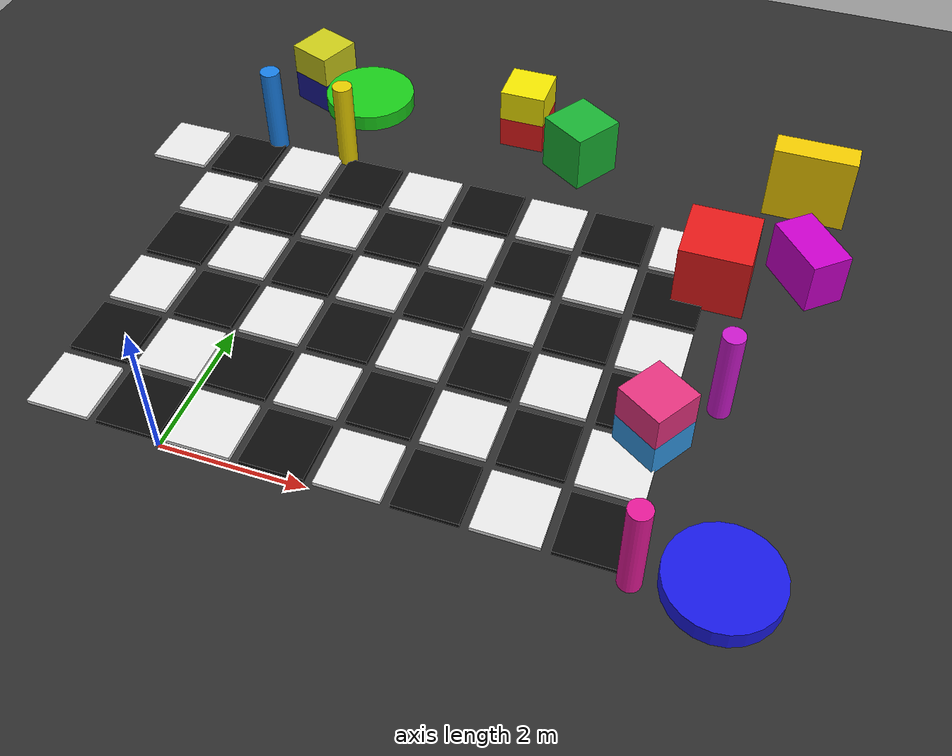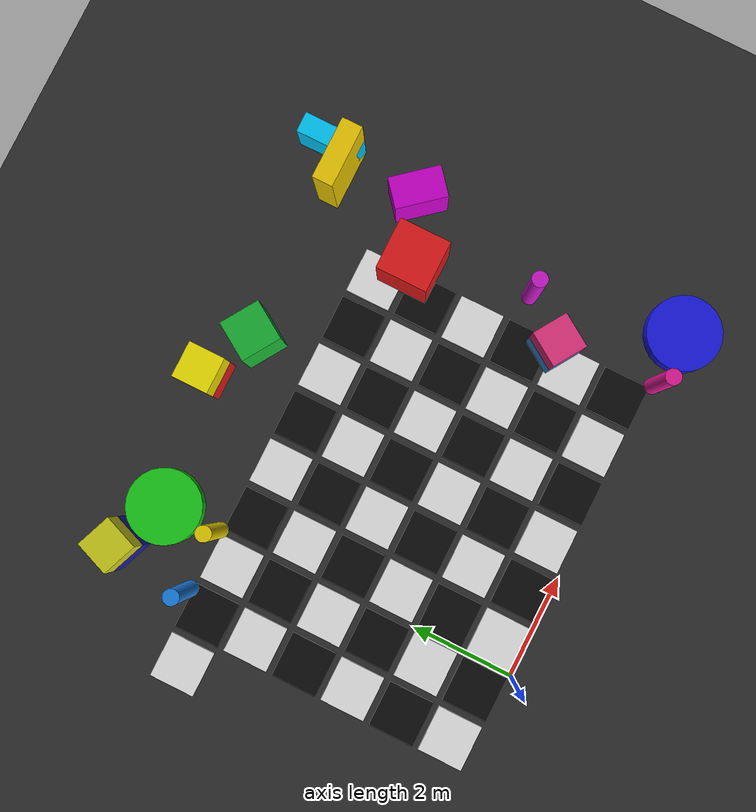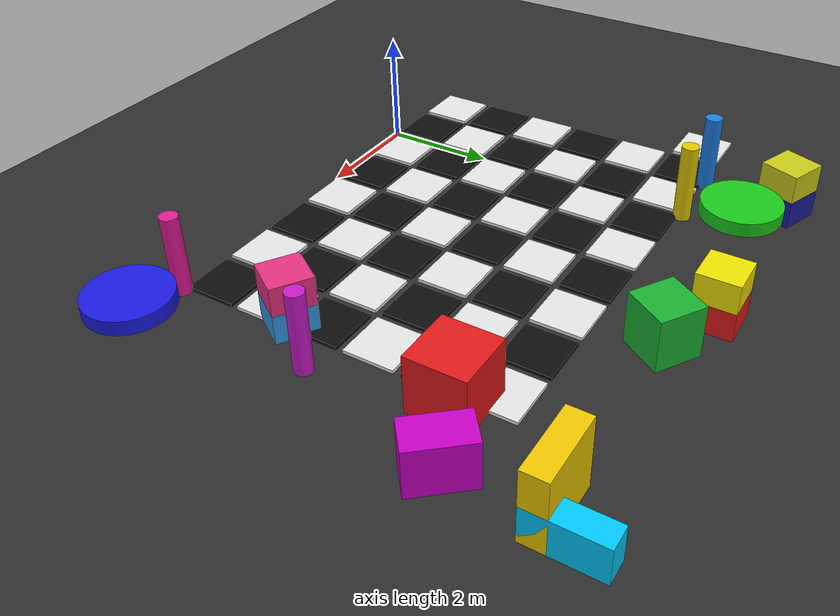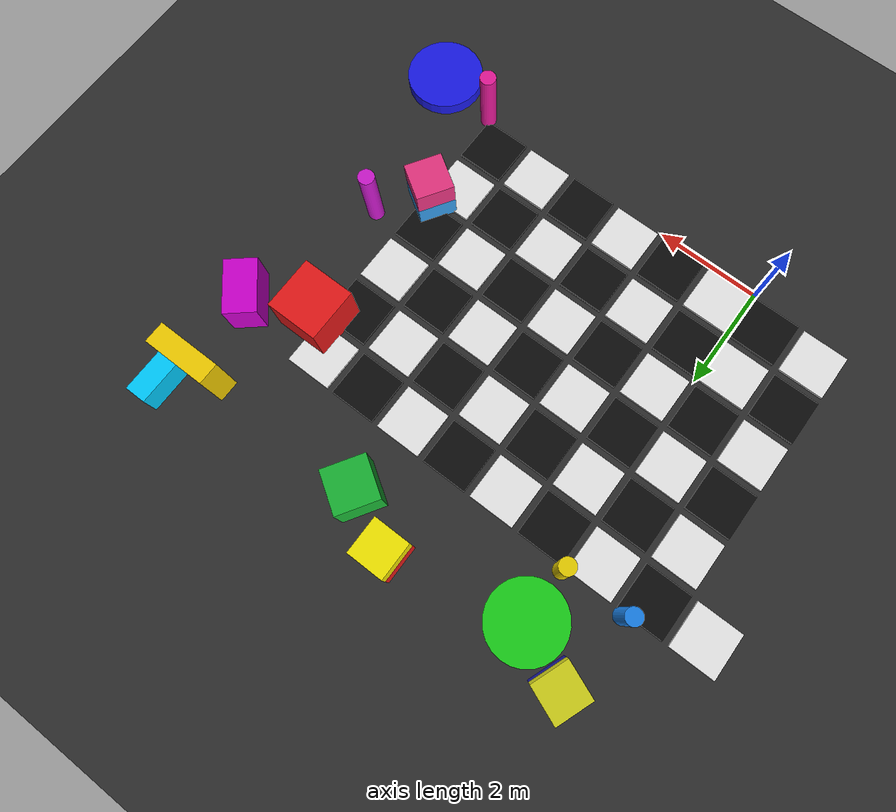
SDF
<sdf version="1.9">
 <world name="slam_world_realistic">
  <model name="ground_plane">
   <static>true</static>
   <link name="ground_link">
    <collision name="collision">
     <geometry><plane><normal>0 0 1</normal><size>80 80</size></plane></geometry>
    </collision>
    <visual name="visual">
     <geometry><plane><normal>0 0 1</normal><size>80 80</size></plane></geometry>
     <material>
      <ambient>0.15 0.15 0.15 1</ambient>
      <diffuse>0.18 0.18 0.18 1</diffuse>
      <specular>0.02 0.02 0.02 1</specular>
     </material>
    </visual>
   </link>
  </model>
  <model name="cb_47">
   <static>true</static>
   <pose>-2.500 5.500 0.03 0 0 0</pose>
   <link name="link">
    <collision name="col"><geometry><box><size>0.88 0.88 0.06</size></box></geometry></collision>
    <visual name="vis">
     <geometry><box><size>0.88 0.88 0.06</size></box></geometry>
     <material>
      <ambient>0.910 0.910 0.910 1</ambient>
      <diffuse>0.910 0.910 0.910 1</diffuse>
      <specular>0.080 0.080 0.080 1</specular>
     </material>
    </visual>
   </link>
  </model>
  <model name="cb_54">
   <static>true</static>
   <pose>-1.500 0.500 0.03 0 0 0</pose>
   <link name="link">
    <collision name="col"><geometry><box><size>0.88 0.88 0.06</size></box></geometry></collision>
    <visual name="vis">
     <geometry><box><size>0.88 0.88 0.06</size></box></geometry>
     <material>
      <ambient>0.910 0.910 0.910 1</ambient>
      <diffuse>0.910 0.910 0.910 1</diffuse>
      <specular>0.080 0.080 0.080 1</specular>
     </material>
    </visual>
   </link>
  </model>
  <model name="cb_55">
   <static>true</static>
   <pose>-1.500 1.500 0.03 0 0 0</pose>
   <link name="link">
    <collision name="col"><geometry><box><size>0.88 0.88 0.06</size></box></geometry></collision>
    <visual name="vis">
     <geometry><box><size>0.88 0.88 0.06</size></box></geometry>
     <material>
      <ambient>0.050 0.050 0.050 1</ambient>
      <diffuse>0.050 0.050 0.050 1</diffuse>
      <specular>0.020 0.020 0.020 1</specular>
     </material>
    </visual>
   </link>
  </model>
  <model name="cb_56">
   <static>true</static>
   <pose>-1.500 2.500 0.03 0 0 0</pose>
   <link name="link">
    <collision name="col"><geometry><box><size>0.88 0.88 0.06</size></box></geometry></collision>
    <visual name="vis">
     <geometry><box><size>0.88 0.88 0.06</size></box></geometry>
     <material>
      <ambient>0.910 0.910 0.910 1</ambient>
      <diffuse>0.910 0.910 0.910 1</diffuse>
      <specular>0.080 0.080 0.080 1</specular>
     </material>
    </visual>
   </link>
  </model>
  <model name="cb_57">
   <static>true</static>
   <pose>-1.500 3.500 0.03 0 0 0</pose>
   <link name="link">
    <collision name="col"><geometry><box><size>0.88 0.88 0.06</size></box></geometry></collision>
    <visual name="vis">
     <geometry><box><size>0.88 0.88 0.06</size></box></geometry>
     <material>
      <ambient>0.050 0.050 0.050 1</ambient>
      <diffuse>0.050 0.050 0.050 1</diffuse>
      <specular>0.020 0.020 0.020 1</specular>
     </material>
    </visual>
   </link>
  </model>
  <model name="cb_58">
   <static>true</static>
   <pose>-1.500 4.500 0.03 0 0 0</pose>
   <link name="link">
    <collision name="col"><geometry><box><size>0.88 0.88 0.06</size></box></geometry></collision>
    <visual name="vis">
     <geometry><box><size>0.88 0.88 0.06</size></box></geometry>
     <material>
      <ambient>0.910 0.910 0.910 1</ambient>
      <diffuse>0.910 0.910 0.910 1</diffuse>
      <specular>0.080 0.080 0.080 1</specular>
     </material>
    </visual>
   </link>
  </model>
  <model name="cb_59">
   <static>true</static>
   <pose>-1.500 5.500 0.03 0 0 0</pose>
   <link name="link">
    <collision name="col"><geometry><box><size>0.88 0.88 0.06</size></box></geometry></collision>
    <visual name="vis">
     <geometry><box><size>0.88 0.88 0.06</size></box></geometry>
     <material>
      <ambient>0.050 0.050 0.050 1</ambient>
      <diffuse>0.050 0.050 0.050 1</diffuse>
      <specular>0.020 0.020 0.020 1</specular>
     </material>
    </visual>
   </link>
  </model>
  <model name="cb_66">
   <static>true</static>
   <pose>-0.500 0.500 0.03 0 0 0</pose>
   <link name="link">
    <collision name="col"><geometry><box><size>0.88 0.88 0.06</size></box></geometry></collision>
    <visual name="vis">
     <geometry><box><size>0.88 0.88 0.06</size></box></geometry>
     <material>
      <ambient>0.050 0.050 0.050 1</ambient>
      <diffuse>0.050 0.050 0.050 1</diffuse>
      <specular>0.020 0.020 0.020 1</specular>
     </material>
    </visual>
   </link>
  </model>
  <model name="cb_67">
   <static>true</static>
   <pose>-0.500 1.500 0.03 0 0 0</pose>
   <link name="link">
    <collision name="col"><geometry><box><size>0.88 0.88 0.06</size></box></geometry></collision>
    <visual name="vis">
     <geometry><box><size>0.88 0.88 0.06</size></box></geometry>
     <material>
      <ambient>0.910 0.910 0.910 1</ambient>
      <diffuse>0.910 0.910 0.910 1</diffuse>
      <specular>0.080 0.080 0.080 1</specular>
     </material>
    </visual>
   </link>
  </model>
  <model name="cb_68">
   <static>true</static>
   <pose>-0.500 2.500 0.03 0 0 0</pose>
   <link name="link">
    <collision name="col"><geometry><box><size>0.88 0.88 0.06</size></box></geometry></collision>
    <visual name="vis">
     <geometry><box><size>0.88 0.88 0.06</size></box></geometry>
     <material>
      <ambient>0.050 0.050 0.050 1</ambient>
      <diffuse>0.050 0.050 0.050 1</diffuse>
      <specular>0.020 0.020 0.020 1</specular>
     </material>
    </visual>
   </link>
  </model>
  <model name="cb_69">
   <static>true</static>
   <pose>-0.500 3.500 0.03 0 0 0</pose>
   <link name="link">
    <collision name="col"><geometry><box><size>0.88 0.88 0.06</size></box></geometry></collision>
    <visual name="vis">
     <geometry><box><size>0.88 0.88 0.06</size></box></geometry>
     <material>
      <ambient>0.910 0.910 0.910 1</ambient>
      <diffuse>0.910 0.910 0.910 1</diffuse>
      <specular>0.080 0.080 0.080 1</specular>
     </material>
    </visual>
   </link>
  </model>
  <model name="cb_70">
   <static>true</static>
   <pose>-0.500 4.500 0.03 0 0 0</pose>
   <link name="link">
    <collision name="col"><geometry><box><size>0.88 0.88 0.06</size></box></geometry></collision>
    <visual name="vis">
     <geometry><box><size>0.88 0.88 0.06</size></box></geometry>
     <material>
      <ambient>0.050 0.050 0.050 1</ambient>
      <diffuse>0.050 0.050 0.050 1</diffuse>
      <specular>0.020 0.020 0.020 1</specular>
     </material>
    </visual>
   </link>
  </model>
  <model name="cb_71">
   <static>true</static>
   <pose>-0.500 5.500 0.03 0 0 0</pose>
   <link name="link">
    <collision name="col"><geometry><box><size>0.88 0.88 0.06</size></box></geometry></collision>
    <visual name="vis">
     <geometry><box><size>0.88 0.88 0.06</size></box></geometry>
     <material>
      <ambient>0.910 0.910 0.910 1</ambient>
      <diffuse>0.910 0.910 0.910 1</diffuse>
      <specular>0.080 0.080 0.080 1</specular>
     </material>
    </visual>
   </link>
  </model>
  <model name="cb_78">
   <static>true</static>
   <pose>0.500 0.500 0.03 0 0 0</pose>
   <link name="link">
    <collision name="col"><geometry><box><size>0.88 0.88 0.06</size></box></geometry></collision>
    <visual name="vis">
     <geometry><box><size>0.88 0.88 0.06</size></box></geometry>
     <material>
      <ambient>0.910 0.910 0.910 1</ambient>
      <diffuse>0.910 0.910 0.910 1</diffuse>
      <specular>0.080 0.080 0.080 1</specular>
     </material>
    </visual>
   </link>
  </model>
  <model name="cb_79">
   <static>true</static>
   <pose>0.500 1.500 0.03 0 0 0</pose>
   <link name="link">
    <collision name="col"><geometry><box><size>0.88 0.88 0.06</size></box></geometry></collision>
    <visual name="vis">
     <geometry><box><size>0.88 0.88 0.06</size></box></geometry>
     <material>
      <ambient>0.050 0.050 0.050 1</ambient>
      <diffuse>0.050 0.050 0.050 1</diffuse>
      <specular>0.020 0.020 0.020 1</specular>
     </material>
    </visual>
   </link>
  </model>
  <model name="cb_80">
   <static>true</static>
   <pose>0.500 2.500 0.03 0 0 0</pose>
   <link name="link">
    <collision name="col"><geometry><box><size>0.88 0.88 0.06</size></box></geometry></collision>
    <visual name="vis">
     <geometry><box><size>0.88 0.88 0.06</size></box></geometry>
     <material>
      <ambient>0.910 0.910 0.910 1</ambient>
      <diffuse>0.910 0.910 0.910 1</diffuse>
      <specular>0.080 0.080 0.080 1</specular>
     </material>
    </visual>
   </link>
  </model>
  <model name="cb_81">
   <static>true</static>
   <pose>0.500 3.500 0.03 0 0 0</pose>
   <link name="link">
    <collision name="col"><geometry><box><size>0.88 0.88 0.06</size></box></geometry></collision>
    <visual name="vis">
     <geometry><box><size>0.88 0.88 0.06</size></box></geometry>
     <material>
      <ambient>0.050 0.050 0.050 1</ambient>
      <diffuse>0.050 0.050 0.050 1</diffuse>
      <specular>0.020 0.020 0.020 1</specular>
     </material>
    </visual>
   </link>
  </model>
  <model name="cb_82">
   <static>true</static>
   <pose>0.500 4.500 0.03 0 0 0</pose>
   <link name="link">
    <collision name="col"><geometry><box><size>0.88 0.88 0.06</size></box></geometry></collision>
    <visual name="vis">
     <geometry><box><size>0.88 0.88 0.06</size></box></geometry>
     <material>
      <ambient>0.910 0.910 0.910 1</ambient>
      <diffuse>0.910 0.910 0.910 1</diffuse>
      <specular>0.080 0.080 0.080 1</specular>
     </material>
    </visual>
   </link>
  </model>
  <model name="cb_83">
   <static>true</static>
   <pose>0.500 5.500 0.03 0 0 0</pose>
   <link name="link">
    <collision name="col"><geometry><box><size>0.88 0.88 0.06</size></box></geometry></collision>
    <visual name="vis">
     <geometry><box><size>0.88 0.88 0.06</size></box></geometry>
     <material>
      <ambient>0.050 0.050 0.050 1</ambient>
      <diffuse>0.050 0.050 0.050 1</diffuse>
      <specular>0.020 0.020 0.020 1</specular>
     </material>
    </visual>
   </link>
  </model>
  <model name="cb_90">
   <static>true</static>
   <pose>1.500 0.500 0.03 0 0 0</pose>
   <link name="link">
    <collision name="col"><geometry><box><size>0.88 0.88 0.06</size></box></geometry></collision>
    <visual name="vis">
     <geometry><box><size>0.88 0.88 0.06</size></box></geometry>
     <material>
      <ambient>0.050 0.050 0.050 1</ambient>
      <diffuse>0.050 0.050 0.050 1</diffuse>
      <specular>0.020 0.020 0.020 1</specular>
     </material>
    </visual>
   </link>
  </model>
  <model name="cb_91">
   <static>true</static>
   <pose>1.500 1.500 0.03 0 0 0</pose>
   <link name="link">
    <collision name="col"><geometry><box><size>0.88 0.88 0.06</size></box></geometry></collision>
    <visual name="vis">
     <geometry><box><size>0.88 0.88 0.06</size></box></geometry>
     <material>
      <ambient>0.910 0.910 0.910 1</ambient>
      <diffuse>0.910 0.910 0.910 1</diffuse>
      <specular>0.080 0.080 0.080 1</specular>
     </material>
    </visual>
   </link>
  </model>
  <model name="cb_92">
   <static>true</static>
   <pose>1.500 2.500 0.03 0 0 0</pose>
   <link name="link">
    <collision name="col"><geometry><box><size>0.88 0.88 0.06</size></box></geometry></collision>
    <visual name="vis">
     <geometry><box><size>0.88 0.88 0.06</size></box></geometry>
     <material>
      <ambient>0.050 0.050 0.050 1</ambient>
      <diffuse>0.050 0.050 0.050 1</diffuse>
      <specular>0.020 0.020 0.020 1</specular>
     </material>
    </visual>
   </link>
  </model>
  <model name="cb_93">
   <static>true</static>
   <pose>1.500 3.500 0.03 0 0 0</pose>
   <link name="link">
    <collision name="col"><geometry><box><size>0.88 0.88 0.06</size></box></geometry></collision>
    <visual name="vis">
     <geometry><box><size>0.88 0.88 0.06</size></box></geometry>
     <material>
      <ambient>0.910 0.910 0.910 1</ambient>
      <diffuse>0.910 0.910 0.910 1</diffuse>
      <specular>0.080 0.080 0.080 1</specular>
     </material>
    </visual>
   </link>
  </model>
  <model name="cb_94">
   <static>true</static>
   <pose>1.500 4.500 0.03 0 0 0</pose>
   <link name="link">
    <collision name="col"><geometry><box><size>0.88 0.88 0.06</size></box></geometry></collision>
    <visual name="vis">
     <geometry><box><size>0.88 0.88 0.06</size></box></geometry>
     <material>
      <ambient>0.050 0.050 0.050 1</ambient>
      <diffuse>0.050 0.050 0.050 1</diffuse>
      <specular>0.020 0.020 0.020 1</specular>
     </material>
    </visual>
   </link>
  </model>
  <model name="cb_95">
   <static>true</static>
   <pose>1.500 5.500 0.03 0 0 0</pose>
   <link name="link">
    <collision name="col"><geometry><box><size>0.88 0.88 0.06</size></box></geometry></collision>
    <visual name="vis">
     <geometry><box><size>0.88 0.88 0.06</size></box></geometry>
     <material>
      <ambient>0.910 0.910 0.910 1</ambient>
      <diffuse>0.910 0.910 0.910 1</diffuse>
      <specular>0.080 0.080 0.080 1</specular>
     </material>
    </visual>
   </link>
  </model>
  <model name="cb_102">
   <static>true</static>
   <pose>2.500 0.500 0.03 0 0 0</pose>
   <link name="link">
    <collision name="col"><geometry><box><size>0.88 0.88 0.06</size></box></geometry></collision>
    <visual name="vis">
     <geometry><box><size>0.88 0.88 0.06</size></box></geometry>
     <material>
      <ambient>0.910 0.910 0.910 1</ambient>
      <diffuse>0.910 0.910 0.910 1</diffuse>
      <specular>0.080 0.080 0.080 1</specular>
     </material>
    </visual>
   </link>
  </model>
  <model name="cb_103">
   <static>true</static>
   <pose>2.500 1.500 0.03 0 0 0</pose>
   <link name="link">
    <collision name="col"><geometry><box><size>0.88 0.88 0.06</size></box></geometry></collision>
    <visual name="vis">
     <geometry><box><size>0.88 0.88 0.06</size></box></geometry>
     <material>
      <ambient>0.050 0.050 0.050 1</ambient>
      <diffuse>0.050 0.050 0.050 1</diffuse>
      <specular>0.020 0.020 0.020 1</specular>
     </material>
    </visual>
   </link>
  </model>
  <model name="cb_104">
   <static>true</static>
   <pose>2.500 2.500 0.03 0 0 0</pose>
   <link name="link">
    <collision name="col"><geometry><box><size>0.88 0.88 0.06</size></box></geometry></collision>
    <visual name="vis">
     <geometry><box><size>0.88 0.88 0.06</size></box></geometry>
     <material>
      <ambient>0.910 0.910 0.910 1</ambient>
      <diffuse>0.910 0.910 0.910 1</diffuse>
      <specular>0.080 0.080 0.080 1</specular>
     </material>
    </visual>
   </link>
  </model>
  <model name="cb_105">
   <static>true</static>
   <pose>2.500 3.500 0.03 0 0 0</pose>
   <link name="link">
    <collision name="col"><geometry><box><size>0.88 0.88 0.06</size></box></geometry></collision>
    <visual name="vis">
     <geometry><box><size>0.88 0.88 0.06</size></box></geometry>
     <material>
      <ambient>0.050 0.050 0.050 1</ambient>
      <diffuse>0.050 0.050 0.050 1</diffuse>
      <specular>0.020 0.020 0.020 1</specular>
     </material>
    </visual>
   </link>
  </model>
  <model name="cb_106">
   <static>true</static>
   <pose>2.500 4.500 0.03 0 0 0</pose>
   <link name="link">
    <collision name="col"><geometry><box><size>0.88 0.88 0.06</size></box></geometry></collision>
    <visual name="vis">
     <geometry><box><size>0.88 0.88 0.06</size></box></geometry>
     <material>
      <ambient>0.910 0.910 0.910 1</ambient>
      <diffuse>0.910 0.910 0.910 1</diffuse>
      <specular>0.080 0.080 0.080 1</specular>
     </material>
    </visual>
   </link>
  </model>
  <model name="cb_107">
   <static>true</static>
   <pose>2.500 5.500 0.03 0 0 0</pose>
   <link name="link">
    <collision name="col"><geometry><box><size>0.88 0.88 0.06</size></box></geometry></collision>
    <visual name="vis">
     <geometry><box><size>0.88 0.88 0.06</size></box></geometry>
     <material>
      <ambient>0.050 0.050 0.050 1</ambient>
      <diffuse>0.050 0.050 0.050 1</diffuse>
      <specular>0.020 0.020 0.020 1</specular>
     </material>
    </visual>
   </link>
  </model>
  <model name="cb_114">
   <static>true</static>
   <pose>3.500 0.500 0.03 0 0 0</pose>
   <link name="link">
    <collision name="col"><geometry><box><size>0.88 0.88 0.06</size></box></geometry></collision>
    <visual name="vis">
     <geometry><box><size>0.88 0.88 0.06</size></box></geometry>
     <material>
      <ambient>0.050 0.050 0.050 1</ambient>
      <diffuse>0.050 0.050 0.050 1</diffuse>
      <specular>0.020 0.020 0.020 1</specular>
     </material>
    </visual>
   </link>
  </model>
  <model name="cb_115">
   <static>true</static>
   <pose>3.500 1.500 0.03 0 0 0</pose>
   <link name="link">
    <collision name="col"><geometry><box><size>0.88 0.88 0.06</size></box></geometry></collision>
    <visual name="vis">
     <geometry><box><size>0.88 0.88 0.06</size></box></geometry>
     <material>
      <ambient>0.910 0.910 0.910 1</ambient>
      <diffuse>0.910 0.910 0.910 1</diffuse>
      <specular>0.080 0.080 0.080 1</specular>
     </material>
    </visual>
   </link>
  </model>
  <model name="cb_116">
   <static>true</static>
   <pose>3.500 2.500 0.03 0 0 0</pose>
   <link name="link">
    <collision name="col"><geometry><box><size>0.88 0.88 0.06</size></box></geometry></collision>
    <visual name="vis">
     <geometry><box><size>0.88 0.88 0.06</size></box></geometry>
     <material>
      <ambient>0.050 0.050 0.050 1</ambient>
      <diffuse>0.050 0.050 0.050 1</diffuse>
      <specular>0.020 0.020 0.020 1</specular>
     </material>
    </visual>
   </link>
  </model>
  <model name="cb_117">
   <static>true</static>
   <pose>3.500 3.500 0.03 0 0 0</pose>
   <link name="link">
    <collision name="col"><geometry><box><size>0.88 0.88 0.06</size></box></geometry></collision>
    <visual name="vis">
     <geometry><box><size>0.88 0.88 0.06</size></box></geometry>
     <material>
      <ambient>0.910 0.910 0.910 1</ambient>
      <diffuse>0.910 0.910 0.910 1</diffuse>
      <specular>0.080 0.080 0.080 1</specular>
     </material>
    </visual>
   </link>
  </model>
  <model name="cb_118">
   <static>true</static>
   <pose>3.500 4.500 0.03 0 0 0</pose>
   <link name="link">
    <collision name="col"><geometry><box><size>0.88 0.88 0.06</size></box></geometry></collision>
    <visual name="vis">
     <geometry><box><size>0.88 0.88 0.06</size></box></geometry>
     <material>
      <ambient>0.050 0.050 0.050 1</ambient>
      <diffuse>0.050 0.050 0.050 1</diffuse>
      <specular>0.020 0.020 0.020 1</specular>
     </material>
    </visual>
   </link>
  </model>
  <model name="cb_119">
   <static>true</static>
   <pose>3.500 5.500 0.03 0 0 0</pose>
   <link name="link">
    <collision name="col"><geometry><box><size>0.88 0.88 0.06</size></box></geometry></collision>
    <visual name="vis">
     <geometry><box><size>0.88 0.88 0.06</size></box></geometry>
     <material>
      <ambient>0.910 0.910 0.910 1</ambient>
      <diffuse>0.910 0.910 0.910 1</diffuse>
      <specular>0.080 0.080 0.080 1</specular>
     </material>
    </visual>
   </link>
  </model>
  <model name="cb_126">
   <static>true</static>
   <pose>4.500 0.500 0.03 0 0 0</pose>
   <link name="link">
    <collision name="col"><geometry><box><size>0.88 0.88 0.06</size></box></geometry></collision>
    <visual name="vis">
     <geometry><box><size>0.88 0.88 0.06</size></box></geometry>
     <material>
      <ambient>0.910 0.910 0.910 1</ambient>
      <diffuse>0.910 0.910 0.910 1</diffuse>
      <specular>0.080 0.080 0.080 1</specular>
     </material>
    </visual>
   </link>
  </model>
  <model name="cb_127">
   <static>true</static>
   <pose>4.500 1.500 0.03 0 0 0</pose>
   <link name="link">
    <collision name="col"><geometry><box><size>0.88 0.88 0.06</size></box></geometry></collision>
    <visual name="vis">
     <geometry><box><size>0.88 0.88 0.06</size></box></geometry>
     <material>
      <ambient>0.050 0.050 0.050 1</ambient>
      <diffuse>0.050 0.050 0.050 1</diffuse>
      <specular>0.020 0.020 0.020 1</specular>
     </material>
    </visual>
   </link>
  </model>
  <model name="cb_128">
   <static>true</static>
   <pose>4.500 2.500 0.03 0 0 0</pose>
   <link name="link">
    <collision name="col"><geometry><box><size>0.88 0.88 0.06</size></box></geometry></collision>
    <visual name="vis">
     <geometry><box><size>0.88 0.88 0.06</size></box></geometry>
     <material>
      <ambient>0.910 0.910 0.910 1</ambient>
      <diffuse>0.910 0.910 0.910 1</diffuse>
      <specular>0.080 0.080 0.080 1</specular>
     </material>
    </visual>
   </link>
  </model>
  <model name="cb_129">
   <static>true</static>
   <pose>4.500 3.500 0.03 0 0 0</pose>
   <link name="link">
    <collision name="col"><geometry><box><size>0.88 0.88 0.06</size></box></geometry></collision>
    <visual name="vis">
     <geometry><box><size>0.88 0.88 0.06</size></box></geometry>
     <material>
      <ambient>0.050 0.050 0.050 1</ambient>
      <diffuse>0.050 0.050 0.050 1</diffuse>
      <specular>0.020 0.020 0.020 1</specular>
     </material>
    </visual>
   </link>
  </model>
  <model name="cb_130">
   <static>true</static>
   <pose>4.500 4.500 0.03 0 0 0</pose>
   <link name="link">
    <collision name="col"><geometry><box><size>0.88 0.88 0.06</size></box></geometry></collision>
    <visual name="vis">
     <geometry><box><size>0.88 0.88 0.06</size></box></geometry>
     <material>
      <ambient>0.910 0.910 0.910 1</ambient>
      <diffuse>0.910 0.910 0.910 1</diffuse>
      <specular>0.080 0.080 0.080 1</specular>
     </material>
    </visual>
   </link>
  </model>
  <model name="cb_131">
   <static>true</static>
   <pose>4.500 5.500 0.03 0 0 0</pose>
   <link name="link">
    <collision name="col"><geometry><box><size>0.88 0.88 0.06</size></box></geometry></collision>
    <visual name="vis">
     <geometry><box><size>0.88 0.88 0.06</size></box></geometry>
     <material>
      <ambient>0.050 0.050 0.050 1</ambient>
      <diffuse>0.050 0.050 0.050 1</diffuse>
      <specular>0.020 0.020 0.020 1</specular>
     </material>
    </visual>
   </link>
  </model>
  <model name="cb_138">
   <static>true</static>
   <pose>5.500 0.500 0.03 0 0 0</pose>
   <link name="link">
    <collision name="col"><geometry><box><size>0.88 0.88 0.06</size></box></geometry></collision>
    <visual name="vis">
     <geometry><box><size>0.88 0.88 0.06</size></box></geometry>
     <material>
      <ambient>0.050 0.050 0.050 1</ambient>
      <diffuse>0.050 0.050 0.050 1</diffuse>
      <specular>0.020 0.020 0.020 1</specular>
     </material>
    </visual>
   </link>
  </model>
  <model name="cb_139">
   <static>true</static>
   <pose>5.500 1.500 0.03 0 0 0</pose>
   <link name="link">
    <collision name="col"><geometry><box><size>0.88 0.88 0.06</size></box></geometry></collision>
    <visual name="vis">
     <geometry><box><size>0.88 0.88 0.06</size></box></geometry>
     <material>
      <ambient>0.910 0.910 0.910 1</ambient>
      <diffuse>0.910 0.910 0.910 1</diffuse>
      <specular>0.080 0.080 0.080 1</specular>
     </material>
    </visual>
   </link>
  </model>
  <model name="cb_140">
   <static>true</static>
   <pose>5.500 2.500 0.03 0 0 0</pose>
   <link name="link">
    <collision name="col"><geometry><box><size>0.88 0.88 0.06</size></box></geometry></collision>
    <visual name="vis">
     <geometry><box><size>0.88 0.88 0.06</size></box></geometry>
     <material>
      <ambient>0.050 0.050 0.050 1</ambient>
      <diffuse>0.050 0.050 0.050 1</diffuse>
      <specular>0.020 0.020 0.020 1</specular>
     </material>
    </visual>
   </link>
  </model>
  <model name="cb_141">
   <static>true</static>
   <pose>5.500 3.500 0.03 0 0 0</pose>
   <link name="link">
    <collision name="col"><geometry><box><size>0.88 0.88 0.06</size></box></geometry></collision>
    <visual name="vis">
     <geometry><box><size>0.88 0.88 0.06</size></box></geometry>
     <material>
      <ambient>0.910 0.910 0.910 1</ambient>
      <diffuse>0.910 0.910 0.910 1</diffuse>
      <specular>0.080 0.080 0.080 1</specular>
     </material>
    </visual>
   </link>
  </model>
  <model name="cb_142">
   <static>true</static>
   <pose>5.500 4.500 0.03 0 0 0</pose>
   <link name="link">
    <collision name="col"><geometry><box><size>0.88 0.88 0.06</size></box></geometry></collision>
    <visual name="vis">
     <geometry><box><size>0.88 0.88 0.06</size></box></geometry>
     <material>
      <ambient>0.050 0.050 0.050 1</ambient>
      <diffuse>0.050 0.050 0.050 1</diffuse>
      <specular>0.020 0.020 0.020 1</specular>
     </material>
    </visual>
   </link>
  </model>
  <model name="cb_143">
   <static>true</static>
   <pose>5.500 5.500 0.03 0 0 0</pose>
   <link name="link">
    <collision name="col"><geometry><box><size>0.88 0.88 0.06</size></box></geometry></collision>
    <visual name="vis">
     <geometry><box><size>0.88 0.88 0.06</size></box></geometry>
     <material>
      <ambient>0.910 0.910 0.910 1</ambient>
      <diffuse>0.910 0.910 0.910 1</diffuse>
      <specular>0.080 0.080 0.080 1</specular>
     </material>
    </visual>
   </link>
  </model>
  <model name="pillar_1">
   <static>true</static>
   <pose>6.00 0.00 0.70 0 0 0</pose>
   <link name="link">
    <collision name="col">
     <geometry><cylinder><radius>0.15</radius><length>1.4</length></cylinder></geometry>
    </collision>
    <visual name="vis">
     <geometry><cylinder><radius>0.15</radius><length>1.4</length></cylinder></geometry>
     <material>
      <ambient>0.90 0.10 0.60 1</ambient>
      <diffuse>0.90 0.10 0.60 1</diffuse>
      <specular>0.30 0.30 0.30 1</specular>
     </material>
    </visual>
   </link>
  </model>
  <model name="pillar_3">
   <static>true</static>
   <pose>0.00 6.00 0.70 0 0 0</pose>
   <link name="link">
    <collision name="col">
     <geometry><cylinder><radius>0.15</radius><length>1.4</length></cylinder></geometry>
    </collision>
    <visual name="vis">
     <geometry><cylinder><radius>0.15</radius><length>1.4</length></cylinder></geometry>
     <material>
      <ambient>0.90 0.80 0.00 1</ambient>
      <diffuse>0.90 0.80 0.00 1</diffuse>
      <specular>0.25 0.25 0.25 1</specular>
     </material>
    </visual>
   </link>
  </model>
  <model name="pillar_7">
   <static>true</static>
   <pose>-1.20 6.00 0.70 0 0 0</pose>
   <link name="link">
    <collision name="col">
     <geometry><cylinder><radius>0.15</radius><length>1.4</length></cylinder></geometry>
    </collision>
    <visual name="vis">
     <geometry><cylinder><radius>0.15</radius><length>1.4</length></cylinder></geometry>
     <material>
      <ambient>0.10 0.50 0.90 1</ambient>
      <diffuse>0.10 0.50 0.90 1</diffuse>
      <specular>0.25 0.25 0.25 1</specular>
     </material>
    </visual>
   </link>
  </model>
  <model name="pillar_8">
   <static>true</static>
   <pose>6.50 2.80 0.70 0 0 0</pose>
   <link name="link">
    <collision name="col">
     <geometry><cylinder><radius>0.15</radius><length>1.4</length></cylinder></geometry>
    </collision>
    <visual name="vis">
     <geometry><cylinder><radius>0.15</radius><length>1.4</length></cylinder></geometry>
     <material>
      <ambient>0.80 0.10 0.80 1</ambient>
      <diffuse>0.80 0.10 0.80 1</diffuse>
      <specular>0.30 0.30 0.30 1</specular>
     </material>
    </visual>
   </link>
  </model>
  <model name="fat_cyl_1">
   <static>true</static>
   <pose>7.00 0.00 0.50 0 0 0</pose>
   <link name="link">
    <collision name="col">
     <geometry><cylinder><radius>0.7</radius><length>0.25</length></cylinder></geometry>
    </collision>
    <visual name="vis">
     <geometry><cylinder><radius>0.7</radius><length>0.25</length></cylinder></geometry>
     <material>
      <ambient>0.10 0.10 0.90 1</ambient>
      <diffuse>0.10 0.10 0.90 1</diffuse>
      <specular>0.40 0.40 0.40 1</specular>
     </material>
    </visual>
   </link>
  </model>
  <model name="fat_cyl_3">
   <static>true</static>
   <pose>0.00 7.00 0.50 0 0 0</pose>
   <link name="link">
    <collision name="col">
     <geometry><cylinder><radius>0.7</radius><length>0.25</length></cylinder></geometry>
    </collision>
    <visual name="vis">
     <geometry><cylinder><radius>0.7</radius><length>0.25</length></cylinder></geometry>
     <material>
      <ambient>0.10 0.80 0.10 1</ambient>
      <diffuse>0.10 0.80 0.10 1</diffuse>
      <specular>0.30 0.30 0.30 1</specular>
     </material>
    </visual>
   </link>
  </model>
  <model name="mbox_0">
   <static>true</static>
   <pose>6.00 5.00 0.50 0 0 0.00</pose>
   <link name="link">
    <collision name="col"><geometry><box><size>1.00 1.00 1.00</size></box></geometry></collision>
    <visual name="vis">
     <geometry><box><size>1.00 1.00 1.00</size></box></geometry>
     <material>
      <ambient>0.90 0.10 0.10 1</ambient>
      <diffuse>0.90 0.10 0.10 1</diffuse>
      <specular>0.15 0.15 0.15 1</specular>
     </material>
    </visual>
   </link>
  </model>
  <model name="mbox_8">
   <static>true</static>
   <pose>3.50 7.00 0.45 0 0 1.00</pose>
   <link name="link">
    <collision name="col"><geometry><box><size>0.80 0.80 0.90</size></box></geometry></collision>
    <visual name="vis">
     <geometry><box><size>0.80 0.80 0.90</size></box></geometry>
     <material>
      <ambient>0.10 0.70 0.20 1</ambient>
      <diffuse>0.10 0.70 0.20 1</diffuse>
      <specular>0.15 0.15 0.15 1</specular>
     </material>
    </visual>
   </link>
  </model>
  <model name="mbox_10">
   <static>true</static>
   <pose>7.20 5.50 0.40 0 0 0.70</pose>
   <link name="link">
    <collision name="col"><geometry><box><size>0.60 1.00 0.80</size></box></geometry></collision>
    <visual name="vis">
     <geometry><box><size>0.60 1.00 0.80</size></box></geometry>
     <material>
      <ambient>0.80 0.00 0.80 1</ambient>
      <diffuse>0.80 0.00 0.80 1</diffuse>
      <specular>0.15 0.15 0.15 1</specular>
     </material>
    </visual>
   </link>
  </model>
  <model name="stripe_lo_0">
   <static>true</static>
   <pose>2.50 7.50 0.25 0 0 0.00</pose>
   <link name="link">
    <collision name="col"><geometry><box><size>0.70 0.70 0.50</size></box></geometry></collision>
    <visual name="vis">
     <geometry><box><size>0.70 0.70 0.50</size></box></geometry>
     <material>
      <ambient>0.90 0.10 0.10 1</ambient>
      <diffuse>0.90 0.10 0.10 1</diffuse>
      <specular>0.30 0.30 0.30 1</specular>
     </material>
    </visual>
   </link>
  </model>
  <model name="stripe_hi_0">
   <static>true</static>
   <pose>2.50 7.50 0.75 0 0 0.00</pose>
   <link name="link">
    <collision name="col"><geometry><box><size>0.70 0.70 0.50</size></box></geometry></collision>
    <visual name="vis">
     <geometry><box><size>0.70 0.70 0.50</size></box></geometry>
     <material>
      <ambient>0.95 0.90 0.00 1</ambient>
      <diffuse>0.95 0.90 0.00 1</diffuse>
      <specular>0.30 0.30 0.30 1</specular>
     </material>
    </visual>
   </link>
  </model>
  <model name="stripe_lo_4">
   <static>true</static>
   <pose>5.80 2.00 0.25 0 0 1.00</pose>
   <link name="link">
    <collision name="col"><geometry><box><size>0.70 0.70 0.50</size></box></geometry></collision>
    <visual name="vis">
     <geometry><box><size>0.70 0.70 0.50</size></box></geometry>
     <material>
      <ambient>0.20 0.60 0.90 1</ambient>
      <diffuse>0.20 0.60 0.90 1</diffuse>
      <specular>0.30 0.30 0.30 1</specular>
     </material>
    </visual>
   </link>
  </model>
  <model name="stripe_hi_4">
   <static>true</static>
   <pose>5.80 2.00 0.75 0 0 1.00</pose>
   <link name="link">
    <collision name="col"><geometry><box><size>0.70 0.70 0.50</size></box></geometry></collision>
    <visual name="vis">
     <geometry><box><size>0.70 0.70 0.50</size></box></geometry>
     <material>
      <ambient>0.90 0.20 0.50 1</ambient>
      <diffuse>0.90 0.20 0.50 1</diffuse>
      <specular>0.30 0.30 0.30 1</specular>
     </material>
    </visual>
   </link>
  </model>
  <model name="stripe_lo_7">
   <static>true</static>
   <pose>-1.00 7.50 0.25 0 0 1.20</pose>
   <link name="link">
    <collision name="col"><geometry><box><size>0.70 0.70 0.50</size></box></geometry></collision>
    <visual name="vis">
     <geometry><box><size>0.70 0.70 0.50</size></box></geometry>
     <material>
      <ambient>0.10 0.10 0.60 1</ambient>
      <diffuse>0.10 0.10 0.60 1</diffuse>
      <specular>0.30 0.30 0.30 1</specular>
     </material>
    </visual>
   </link>
  </model>
  <model name="stripe_hi_7">
   <static>true</static>
   <pose>-1.00 7.50 0.75 0 0 1.20</pose>
   <link name="link">
    <collision name="col"><geometry><box><size>0.70 0.70 0.50</size></box></geometry></collision>
    <visual name="vis">
     <geometry><box><size>0.70 0.70 0.50</size></box></geometry>
     <material>
      <ambient>0.80 0.80 0.10 1</ambient>
      <diffuse>0.80 0.80 0.10 1</diffuse>
      <specular>0.30 0.30 0.30 1</specular>
     </material>
    </visual>
   </link>
  </model>
  <model name="corner_a_1">
   <static>true</static>
   <pose>7.00 7.00 0.60 0 0 0.00</pose>
   <link name="link">
    <collision name="col"><geometry><box><size>1.20 0.40 1.20</size></box></geometry></collision>
    <visual name="vis">
     <geometry><box><size>1.20 0.40 1.20</size></box></geometry>
     <material>
      <ambient>0.95 0.80 0.00 1</ambient>
      <diffuse>0.95 0.80 0.00 1</diffuse>
      <specular>0.15 0.15 0.15 1</specular>
     </material>
    </visual>
   </link>
  </model>
  <model name="corner_b_1">
   <static>true</static>
   <pose>7.40 7.40 0.30 0 0 0.00</pose>
   <link name="link">
    <collision name="col"><geometry><box><size>0.40 1.20 0.60</size></box></geometry></collision>
    <visual name="vis">
     <geometry><box><size>0.40 1.20 0.60</size></box></geometry>
     <material>
      <ambient>0.00 0.80 1.00 1</ambient>
      <diffuse>0.00 0.80 1.00 1</diffuse>
      <specular>0.15 0.15 0.15 1</specular>
     </material>
    </visual>
   </link>
  </model>
 </world>
</sdf>
